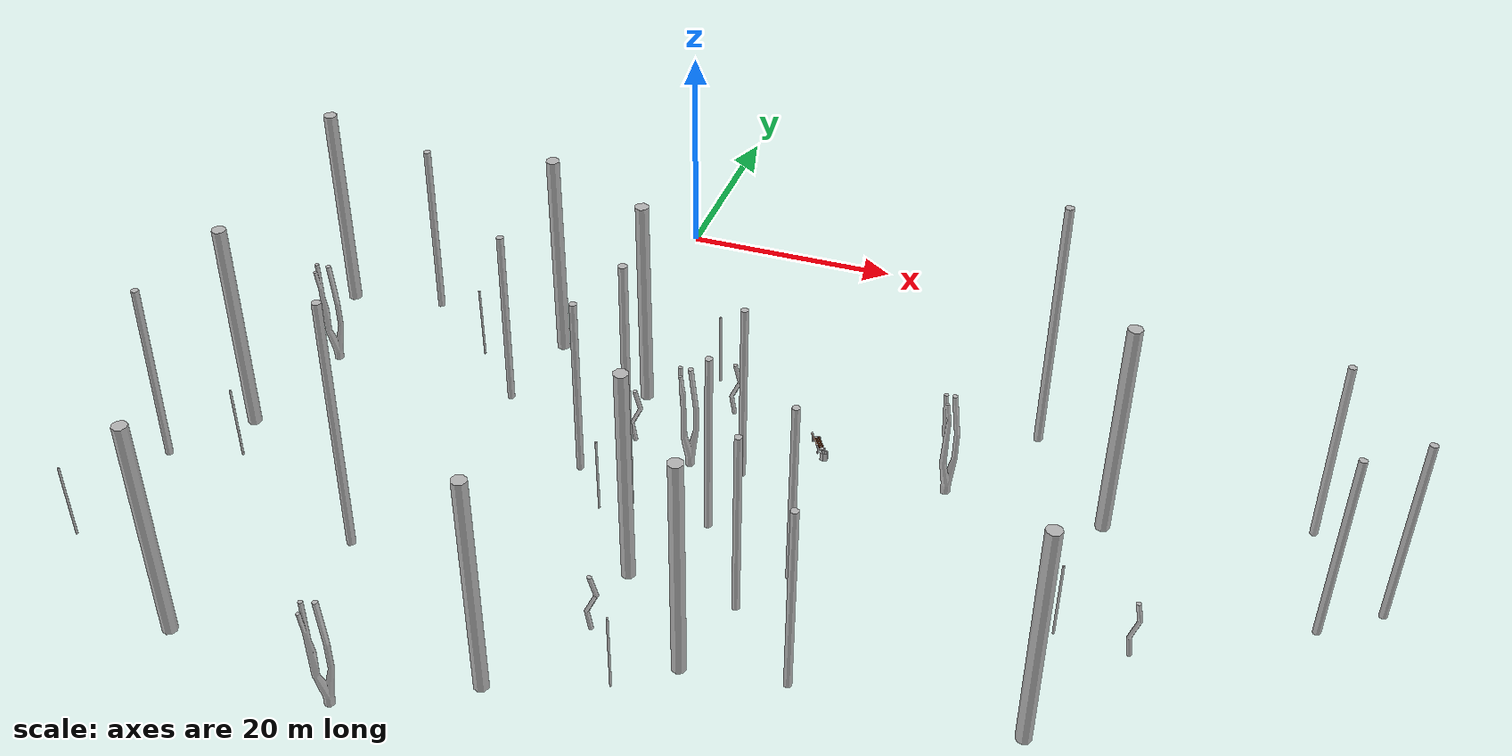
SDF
<sdf version="1.6">
 <world name="default">
  <model name="park_trash_0">
   <static>1</static>
   <link name="link">
    <collision name="collision">
     <geometry><mesh><uri>model://park_trash/meshes/collision.dae</uri></mesh></geometry>
    </collision>
    <visual name="visual">
     <geometry><mesh><uri>model://park_trash/meshes/park_trash.dae</uri></mesh></geometry>
    </visual>
   </link>
   <pose>22.0436 -29.7059 0.334648 0 -0 0</pose>
  </model>
  <model name="park_tree_4">
   <static>1</static>
   <link name="link">
    <collision name="collision">
     <geometry><mesh><uri>model://park_tree_4/meshes/collision.dae</uri></mesh></geometry>
    </collision>
    <visual name="visual">
     <geometry><mesh><uri>model://park_tree_4/meshes/park_tree_4.dae</uri></mesh></geometry>
    </visual>
   </link>
   <pose>31.9826 -29.5415 0 0 -0 0</pose>
  </model>
  <model name="park_tree_5">
   <static>1</static>
   <link name="link">
    <collision name="collision">
     <geometry><mesh><uri>model://park_tree_5/meshes/collision.dae</uri></mesh></geometry>
    </collision>
    <visual name="visual">
     <geometry><mesh><uri>model://park_tree_5/meshes/park_tree_5.dae</uri></mesh></geometry>
    </visual>
   </link>
   <pose>38.6561 -20.2231 0 0 -0 0</pose>
  </model>
  <model name="park_tree_1_2">
   <static>1</static>
   <link name="link">
    <collision name="collision">
     <geometry><mesh><uri>model://park_tree_1/meshes/collision.dae</uri></mesh></geometry>
    </collision>
    <visual name="visual">
     <geometry><mesh><uri>model://park_tree_1/meshes/park_tree_1.dae</uri></mesh></geometry>
    </visual>
   </link>
   <pose>45.703 -29.5116 0 0 -0 0</pose>
  </model>
  <model name="park_tree_2_1">
   <static>1</static>
   <link name="link">
    <collision name="collision">
     <geometry><mesh><uri>model://park_tree_2/meshes/collision.dae</uri></mesh></geometry>
    </collision>
    <visual name="visual">
     <geometry><mesh><uri>model://park_tree_2/meshes/park_tree_2.dae</uri></mesh></geometry>
    </visual>
   </link>
   <pose>62.0781 -25.035 0 0 -0 1.38081</pose>
  </model>
  <model name="park_tree_2_2">
   <static>1</static>
   <link name="link">
    <collision name="collision">
     <geometry><mesh><uri>model://park_tree_2/meshes/collision.dae</uri></mesh></geometry>
    </collision>
    <visual name="visual">
     <geometry><mesh><uri>model://park_tree_2/meshes/park_tree_2.dae</uri></mesh></geometry>
    </visual>
   </link>
   <pose>26.583 -54.7812 0 0 -0 0</pose>
  </model>
  <model name="park_tree_2_3">
   <static>1</static>
   <link name="link">
    <collision name="collision">
     <geometry><mesh><uri>model://park_tree_2/meshes/collision.dae</uri></mesh></geometry>
    </collision>
    <visual name="visual">
     <geometry><mesh><uri>model://park_tree_2/meshes/park_tree_2.dae</uri></mesh></geometry>
    </visual>
   </link>
   <pose>20.4159 -48.4504 0 0 -0 0</pose>
  </model>
  <model name="park_tree_2_4">
   <static>1</static>
   <link name="link">
    <collision name="collision">
     <geometry><mesh><uri>model://park_tree_2/meshes/collision.dae</uri></mesh></geometry>
    </collision>
    <visual name="visual">
     <geometry><mesh><uri>model://park_tree_2/meshes/park_tree_2.dae</uri></mesh></geometry>
    </visual>
   </link>
   <pose>23.3497 -43.8236 0 0 -0 0</pose>
  </model>
  <model name="park_tree_1_3">
   <static>1</static>
   <link name="link">
    <collision name="collision">
     <geometry><mesh><uri>model://park_tree_1/meshes/collision.dae</uri></mesh></geometry>
    </collision>
    <visual name="visual">
     <geometry><mesh><uri>model://park_tree_1/meshes/park_tree_1.dae</uri></mesh></geometry>
    </visual>
   </link>
   <pose>18.355 -55.5853 0 0 -0 0</pose>
  </model>
  <model name="park_tree_1_4">
   <static>1</static>
   <link name="link">
    <collision name="collision">
     <geometry><mesh><uri>model://park_tree_1/meshes/collision.dae</uri></mesh></geometry>
    </collision>
    <visual name="visual">
     <geometry><mesh><uri>model://park_tree_1/meshes/park_tree_1.dae</uri></mesh></geometry>
    </visual>
   </link>
   <pose>-5.82791 -20.6307 0 0 -0 0</pose>
  </model>
  <model name="park_tree_5_0">
   <static>1</static>
   <link name="link">
    <collision name="collision">
     <geometry><mesh><uri>model://park_tree_5/meshes/collision.dae</uri></mesh></geometry>
    </collision>
    <visual name="visual">
     <geometry><mesh><uri>model://park_tree_5/meshes/park_tree_5.dae</uri></mesh></geometry>
    </visual>
   </link>
   <pose>-11.2763 -51.4936 0 0 -0 0</pose>
  </model>
  <model name="park_tree_4_0">
   <static>1</static>
   <link name="link">
    <collision name="collision">
     <geometry><mesh><uri>model://park_tree_4/meshes/collision.dae</uri></mesh></geometry>
    </collision>
    <visual name="visual">
     <geometry><mesh><uri>model://park_tree_4/meshes/park_tree_4.dae</uri></mesh></geometry>
    </visual>
   </link>
   <pose>-25.2396 -29.2568 0 0 -0 0</pose>
  </model>
  <model name="park_tree_6_2">
   <static>1</static>
   <link name="link">
    <collision name="collision">
     <geometry><mesh><uri>model://park_tree_6/meshes/collision.dae</uri></mesh></geometry>
    </collision>
    <visual name="visual">
     <geometry><mesh><uri>model://park_tree_6/meshes/park_tree_6.dae</uri></mesh></geometry>
    </visual>
   </link>
   <pose>10.2108 -21.5697 0 0 -0 0</pose>
  </model>
  <model name="park_tree_1_5">
   <static>1</static>
   <link name="link">
    <collision name="collision">
     <geometry><mesh><uri>model://park_tree_1/meshes/collision.dae</uri></mesh></geometry>
    </collision>
    <visual name="visual">
     <geometry><mesh><uri>model://park_tree_1/meshes/park_tree_1.dae</uri></mesh></geometry>
    </visual>
   </link>
   <pose>4.24531 -25.2323 0 0 -0 0</pose>
  </model>
  <model name="park_tree_3_2">
   <static>1</static>
   <link name="link">
    <collision name="collision">
     <geometry><mesh><uri>model://park_tree_3/meshes/collision.dae</uri></mesh></geometry>
    </collision>
    <visual name="visual">
     <geometry><mesh><uri>model://park_tree_3/meshes/park_tree_3.dae</uri></mesh></geometry>
    </visual>
   </link>
   <pose>12.632 -25.5386 0 0 -0 0</pose>
  </model>
  <model name="park_tree_4_1">
   <static>1</static>
   <link name="link">
    <collision name="collision">
     <geometry><mesh><uri>model://park_tree_4/meshes/collision.dae</uri></mesh></geometry>
    </collision>
    <visual name="visual">
     <geometry><mesh><uri>model://park_tree_4/meshes/park_tree_4.dae</uri></mesh></geometry>
    </visual>
   </link>
   <pose>10.5747 -33.1001 0 0 -0 0</pose>
  </model>
  <model name="park_tree_2_6">
   <static>1</static>
   <link name="link">
    <collision name="collision">
     <geometry><mesh><uri>model://park_tree_2/meshes/collision.dae</uri></mesh></geometry>
    </collision>
    <visual name="visual">
     <geometry><mesh><uri>model://park_tree_2/meshes/park_tree_2.dae</uri></mesh></geometry>
    </visual>
   </link>
   <pose>15.8322 -33.1313 0 0 -0 0</pose>
  </model>
  <model name="park_tree_2_7">
   <static>1</static>
   <link name="link">
    <collision name="collision">
     <geometry><mesh><uri>model://park_tree_2/meshes/collision.dae</uri></mesh></geometry>
    </collision>
    <visual name="visual">
     <geometry><mesh><uri>model://park_tree_2/meshes/park_tree_2.dae</uri></mesh></geometry>
    </visual>
   </link>
   <pose>15.2735 -40.1946 0 0 -0 0</pose>
  </model>
  <model name="park_tree_2_8">
   <static>1</static>
   <link name="link">
    <collision name="collision">
     <geometry><mesh><uri>model://park_tree_2/meshes/collision.dae</uri></mesh></geometry>
    </collision>
    <visual name="visual">
     <geometry><mesh><uri>model://park_tree_2/meshes/park_tree_2.dae</uri></mesh></geometry>
    </visual>
   </link>
   <pose>-7.04694 -29.7039 0 0 -0 0</pose>
  </model>
  <model name="park_tree_1_6">
   <static>1</static>
   <link name="link">
    <collision name="collision">
     <geometry><mesh><uri>model://park_tree_1/meshes/collision.dae</uri></mesh></geometry>
    </collision>
    <visual name="visual">
     <geometry><mesh><uri>model://park_tree_1/meshes/park_tree_1.dae</uri></mesh></geometry>
    </visual>
   </link>
   <pose>-27.1668 -39.9112 0 0 -0 0</pose>
  </model>
  <model name="park_tree_2_10">
   <static>1</static>
   <link name="link">
    <collision name="collision">
     <geometry><mesh><uri>model://park_tree_2/meshes/collision.dae</uri></mesh></geometry>
    </collision>
    <visual name="visual">
     <geometry><mesh><uri>model://park_tree_2/meshes/park_tree_2.dae</uri></mesh></geometry>
    </visual>
   </link>
   <pose>-19.3986 -18.6471 0 0 -0 0</pose>
  </model>
  <model name="park_tree_2_11">
   <static>1</static>
   <link name="link">
    <collision name="collision">
     <geometry><mesh><uri>model://park_tree_2/meshes/collision.dae</uri></mesh></geometry>
    </collision>
    <visual name="visual">
     <geometry><mesh><uri>model://park_tree_2/meshes/park_tree_2.dae</uri></mesh></geometry>
    </visual>
   </link>
   <pose>-31.532 -46.551 0 0 -0 0</pose>
  </model>
  <model name="park_tree_1_9">
   <static>1</static>
   <link name="link">
    <collision name="collision">
     <geometry><mesh><uri>model://park_tree_1/meshes/collision.dae</uri></mesh></geometry>
    </collision>
    <visual name="visual">
     <geometry><mesh><uri>model://park_tree_1/meshes/park_tree_1.dae</uri></mesh></geometry>
    </visual>
   </link>
   <pose>-28.1892 -19.6578 0 0 -0 0</pose>
  </model>
  <model name="park_tree_1_10">
   <static>1</static>
   <link name="link">
    <collision name="collision">
     <geometry><mesh><uri>model://park_tree_1/meshes/collision.dae</uri></mesh></geometry>
    </collision>
    <visual name="visual">
     <geometry><mesh><uri>model://park_tree_1/meshes/park_tree_1.dae</uri></mesh></geometry>
    </visual>
   </link>
   <pose>-19.7769 -64.4854 0 0 -0 0</pose>
  </model>
  <model name="park_tree_1_11">
   <static>1</static>
   <link name="link">
    <collision name="collision">
     <geometry><mesh><uri>model://park_tree_1/meshes/collision.dae</uri></mesh></geometry>
    </collision>
    <visual name="visual">
     <geometry><mesh><uri>model://park_tree_1/meshes/park_tree_1.dae</uri></mesh></geometry>
    </visual>
   </link>
   <pose>11.1016 -47.356 0 0 -0 0</pose>
  </model>
  <model name="park_tree_3_3">
   <static>1</static>
   <link name="link">
    <collision name="collision">
     <geometry><mesh><uri>model://park_tree_3/meshes/collision.dae</uri></mesh></geometry>
    </collision>
    <visual name="visual">
     <geometry><mesh><uri>model://park_tree_3/meshes/park_tree_3.dae</uri></mesh></geometry>
    </visual>
   </link>
   <pose>5.73815 -31.881 0 0 -0 0</pose>
  </model>
  <model name="park_tree_3_4">
   <static>1</static>
   <link name="link">
    <collision name="collision">
     <geometry><mesh><uri>model://park_tree_3/meshes/collision.dae</uri></mesh></geometry>
    </collision>
    <visual name="visual">
     <geometry><mesh><uri>model://park_tree_3/meshes/park_tree_3.dae</uri></mesh></geometry>
    </visual>
   </link>
   <pose>10.7615 -54.2476 0 0 -0 0</pose>
  </model>
  <model name="park_tree_6_3">
   <static>1</static>
   <link name="link">
    <collision name="collision">
     <geometry><mesh><uri>model://park_tree_6/meshes/collision.dae</uri></mesh></geometry>
    </collision>
    <visual name="visual">
     <geometry><mesh><uri>model://park_tree_6/meshes/park_tree_6.dae</uri></mesh></geometry>
    </visual>
   </link>
   <pose>-25.0187 -44.8933 0 0 -0 0</pose>
  </model>
  <model name="park_tree_6_4">
   <static>1</static>
   <link name="link">
    <collision name="collision">
     <geometry><mesh><uri>model://park_tree_6/meshes/collision.dae</uri></mesh></geometry>
    </collision>
    <visual name="visual">
     <geometry><mesh><uri>model://park_tree_6/meshes/park_tree_6.dae</uri></mesh></geometry>
    </visual>
   </link>
   <pose>-11.6889 -24.7564 0 0 -0 0</pose>
  </model>
  <model name="park_tree_6_5">
   <static>1</static>
   <link name="link">
    <collision name="collision">
     <geometry><mesh><uri>model://park_tree_6/meshes/collision.dae</uri></mesh></geometry>
    </collision>
    <visual name="visual">
     <geometry><mesh><uri>model://park_tree_6/meshes/park_tree_6.dae</uri></mesh></geometry>
    </visual>
   </link>
   <pose>14.6439 -59.3479 0 0 -0 0</pose>
  </model>
  <model name="park_tree_5_2">
   <static>1</static>
   <link name="link">
    <collision name="collision">
     <geometry><mesh><uri>model://park_tree_5/meshes/collision.dae</uri></mesh></geometry>
    </collision>
    <visual name="visual">
     <geometry><mesh><uri>model://park_tree_5/meshes/park_tree_5.dae</uri></mesh></geometry>
    </visual>
   </link>
   <pose>8.1697 -39.6387 0 0 -0 0</pose>
  </model>
  <model name="park_tree_6_6">
   <static>1</static>
   <link name="link">
    <collision name="collision">
     <geometry><mesh><uri>model://park_tree_6/meshes/collision.dae</uri></mesh></geometry>
    </collision>
    <visual name="visual">
     <geometry><mesh><uri>model://park_tree_6/meshes/park_tree_6.dae</uri></mesh></geometry>
    </visual>
   </link>
   <pose>6.40273 -41.2923 0 0 -0 0</pose>
  </model>
  <model name="park_tree_2_12">
   <static>1</static>
   <link name="link">
    <collision name="collision">
     <geometry><mesh><uri>model://park_tree_2/meshes/collision.dae</uri></mesh></geometry>
    </collision>
    <visual name="visual">
     <geometry><mesh><uri>model://park_tree_2/meshes/park_tree_2.dae</uri></mesh></geometry>
    </visual>
   </link>
   <pose>2.59484 -36.8051 0 0 -0 0</pose>
  </model>
  <model name="park_tree_4_2">
   <static>1</static>
   <link name="link">
    <collision name="collision">
     <geometry><mesh><uri>model://park_tree_4/meshes/collision.dae</uri></mesh></geometry>
    </collision>
    <visual name="visual">
     <geometry><mesh><uri>model://park_tree_4/meshes/park_tree_4.dae</uri></mesh></geometry>
    </visual>
   </link>
   <pose>-5.04459 -67.2551 0 0 -0 0</pose>
  </model>
  <model name="park_tree_1_12">
   <static>1</static>
   <link name="link">
    <collision name="collision">
     <geometry><mesh><uri>model://park_tree_1/meshes/collision.dae</uri></mesh></geometry>
    </collision>
    <visual name="visual">
     <geometry><mesh><uri>model://park_tree_1/meshes/park_tree_1.dae</uri></mesh></geometry>
    </visual>
   </link>
   <pose>5.21331 -62.0369 0 0 -0 0</pose>
  </model>
  <model name="park_tree_6_7">
   <static>1</static>
   <link name="link">
    <collision name="collision">
     <geometry><mesh><uri>model://park_tree_6/meshes/collision.dae</uri></mesh></geometry>
    </collision>
    <visual name="visual">
     <geometry><mesh><uri>model://park_tree_6/meshes/park_tree_6.dae</uri></mesh></geometry>
    </visual>
   </link>
   <pose>-32.3788 -58.0917 0 0 -0 0</pose>
  </model>
  <model name="park_tree_2_14">
   <static>1</static>
   <link name="link">
    <collision name="collision">
     <geometry><mesh><uri>model://park_tree_2/meshes/collision.dae</uri></mesh></geometry>
    </collision>
    <visual name="visual">
     <geometry><mesh><uri>model://park_tree_2/meshes/park_tree_2.dae</uri></mesh></geometry>
    </visual>
   </link>
   <pose>67.7346 -33.0933 0 0 -0 0</pose>
  </model>
  <model name="park_tree_2_15">
   <static>1</static>
   <link name="link">
    <collision name="collision">
     <geometry><mesh><uri>model://park_tree_2/meshes/collision.dae</uri></mesh></geometry>
    </collision>
    <visual name="visual">
     <geometry><mesh><uri>model://park_tree_2/meshes/park_tree_2.dae</uri></mesh></geometry>
    </visual>
   </link>
   <pose>63.0248 -36.5122 0 0 -0 0</pose>
  </model>
  <model name="park_tree_3_5">
   <static>1</static>
   <link name="link">
    <collision name="collision">
     <geometry><mesh><uri>model://park_tree_3/meshes/collision.dae</uri></mesh></geometry>
    </collision>
    <visual name="visual">
     <geometry><mesh><uri>model://park_tree_3/meshes/park_tree_3.dae</uri></mesh></geometry>
    </visual>
   </link>
   <pose>49.8871 -43.6444 0 0 -0 0</pose>
  </model>
  <model name="park_tree_3_6">
   <static>1</static>
   <link name="link">
    <collision name="collision">
     <geometry><mesh><uri>model://park_tree_3/meshes/collision.dae</uri></mesh></geometry>
    </collision>
    <visual name="visual">
     <geometry><mesh><uri>model://park_tree_3/meshes/park_tree_3.dae</uri></mesh></geometry>
    </visual>
   </link>
   <pose>43.3211 -48.1754 0 0 0 -2.35259</pose>
  </model>
  <model name="park_tree_6_8">
   <static>1</static>
   <link name="link">
    <collision name="collision">
     <geometry><mesh><uri>model://park_tree_6/meshes/collision.dae</uri></mesh></geometry>
    </collision>
    <visual name="visual">
     <geometry><mesh><uri>model://park_tree_6/meshes/park_tree_6.dae</uri></mesh></geometry>
    </visual>
   </link>
   <pose>44.373 -43.3816 0 0 -0 0</pose>
  </model>
  <model name="park_tree_1_14">
   <static>1</static>
   <link name="link">
    <collision name="collision">
     <geometry><mesh><uri>model://park_tree_1/meshes/collision.dae</uri></mesh></geometry>
    </collision>
    <visual name="visual">
     <geometry><mesh><uri>model://park_tree_1/meshes/park_tree_1.dae</uri></mesh></geometry>
    </visual>
   </link>
   <pose>43.942 -53.9181 0 0 -0 0</pose>
  </model>
  <model name="park_bench_0_clone_0">
   <static>1</static>
   <link name="link">
    <collision name="collision">
     <geometry><mesh><uri>model://park_bench/meshes/collision.dae</uri></mesh></geometry>
    </collision>
    <visual name="visual">
     <geometry><mesh><uri>model://park_bench/meshes/park_bench.dae</uri></mesh></geometry>
    </visual>
   </link>
   <pose>21.2126 -28.3241 0.380927 0 0 -2.6124</pose>
  </model>
 </world>
</sdf>
